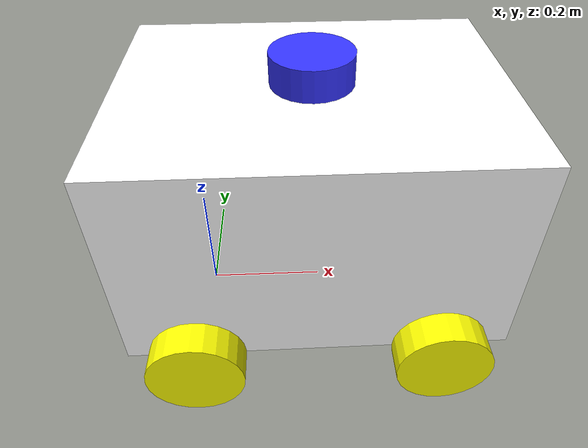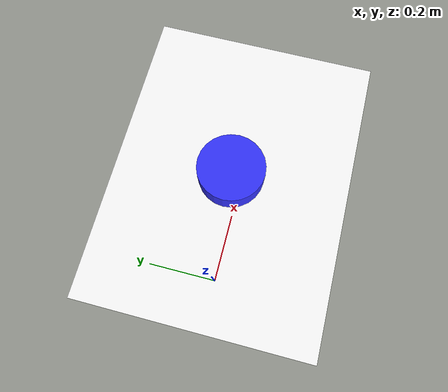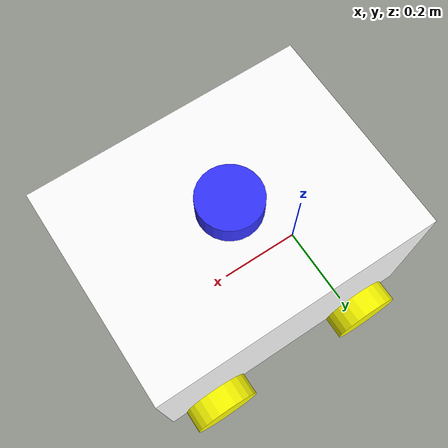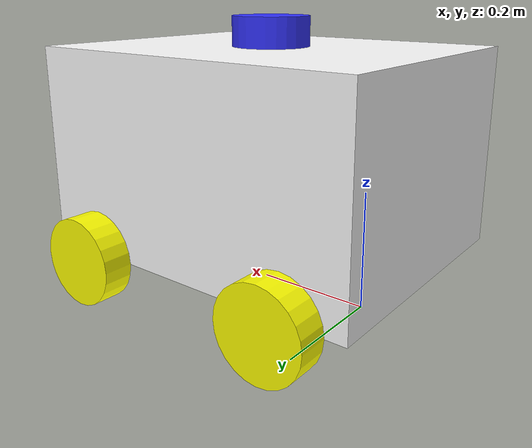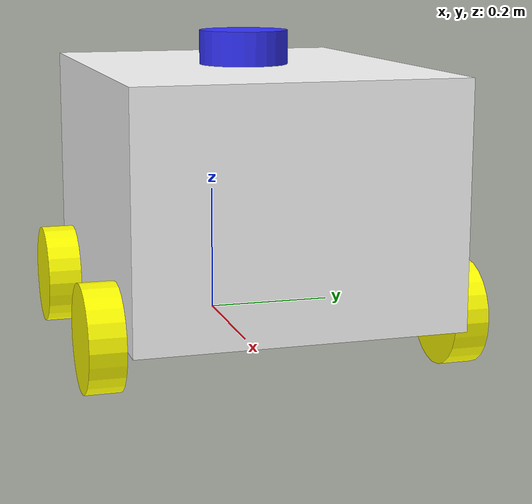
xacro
<?xml version="1.0"?>
<robot xmlns:xacro="http://www.ros.org/wiki/xacro"  name="AckermannBot">

    <xacro:include filename="real_robot.xacro"/>
    <xacro:include filename="ydlidar.xacro"/>
    <xacro:include filename="ros2_control.xacro"/>

</robot>

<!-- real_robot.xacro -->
<robot xmlns:xacro="http://www.ros.org/wiki/xacro">

    <xacro:include filename="inertial_macros.xacro"/>

    <xacro:property name="chassis_length" value="0.6"/>
    <xacro:property name="chassis_width" value="0.46"/>
    <xacro:property name="chassis_height" value="0.345"/>
    <xacro:property name="wheel_radius" value="0.075"/>
    <xacro:property name="wheel_thickness" value="0.05"/>
    <xacro:property name="wheel_base" value="0.38"/>
    <xacro:property name="track_width" value="0.51"/>
    <xacro:property name="chassis_mass" value="20.0"/>
    <xacro:property name="wheel_mass" value="1.0"/>

    <material name="white">
      <color rgba="1 1 1 1"/>
    </material>
    <material name="red">
      <color rgba="1 0 0 1"/>
    </material>
    <material name="orange">
      <color rgba="1 0.3 0.1 1"/>
    </material>
    <material name="black">
      <color rgba="0 0 0 1"/>
    </material>
    <material name="blue">
      <color rgba="0.2 0.2 1 1"/>
    </material>
    <material name="green">
      <color rgba="0 1 0 1"/>
    </material>
     <material name="yellow">
      <color rgba="1 1 0 1"/>
    </material>

    <link name="base_link"></link>

    <joint name="base_footprint_joint" type="fixed">
        <parent link="base_link"/>
        <child link="base_footprint"/>
        <origin xyz="0 0 0" rpy="0 0 0"/>
    </joint>
    <link name="base_footprint"></link>

    <joint name="chassis_joint" type="fixed">
        <parent link="base_link"/>
        <child link="chassis"/>
        <origin xyz="0 0 ${wheel_radius}"/>
    </joint>

    <link name="chassis">
        <visual>
            <origin xyz="${wheel_base/2} 0 ${chassis_height/2}" rpy="0 0 0"/>
            <geometry>
                <box size="${chassis_length} ${chassis_width} ${chassis_height}"/>
            </geometry>
            <material name="white"/>
        </visual>
        <collision>
            <origin xyz="${chassis_length/2} 0 ${chassis_height/2}"/>
            <geometry>
                <box size="${chassis_length} ${chassis_width} ${chassis_height}"/>
            </geometry>
        </collision>
        <xacro:inertial_box mass="${chassis_mass}" x="${chassis_length}" y="${chassis_width}" z="${chassis_height}">
            <origin xyz="${chassis_length/2} 0 ${chassis_height/2}" rpy="0 0 0"/>
        </xacro:inertial_box>
    </link>

    <xacro:macro name="rear_wheel" params="prefix y_offset">
        <link name="${prefix}_wheel">
            <visual>
                <origin xyz="0 0 0" rpy="${pi/2} 0 0"/>
                <geometry>
                    <cylinder radius="${wheel_radius}" length="${wheel_thickness}"/>
                </geometry>
                <material name="yellow"/>
            </visual>
            <collision>
                <origin xyz="0 0 0" rpy="${pi/2} 0 0"/>
                <geometry>
                    <cylinder radius="${wheel_radius}" length="${wheel_thickness}"/>
                </geometry>
                <surface>
                    <friction>
                        <ode>
                            <mu>1.0</mu>
                            <mu2>1.0</mu2>
                        </ode>
                    </friction>
                </surface>
            </collision>
            <xacro:inertial_cylinder mass="${wheel_mass}" radius="${wheel_radius}" length="${wheel_thickness}">
                <origin xyz="0 0 0" rpy="${pi/2} 0 0"/>
            </xacro:inertial_cylinder>
        </link>

        <joint name="${prefix}_wheel_joint" type="continuous">
            <parent link="chassis"/>
            <child link="${prefix}_wheel"/>
            <origin xyz="0 ${y_offset} 0" rpy="0 0 0"/>
            <axis xyz="0 1 0"/>
            <mimic joint="rear_axle_joint" multiplier="1.0" offset="0.0"/>
        </joint>
    </xacro:macro>

    <xacro:macro name="front_steering_wheel" params="prefix y_offset">
        <link name="${prefix}_steering_link">
            <visual>
                <geometry>
                    <box size="0.01 0.01 0.01"/>
                </geometry>
            </visual>
            <xacro:inertial_box mass="0.1" x="0.01" y="0.01" z="0.01">
                <origin xyz="0 0 0" rpy="0 0 0"/>
            </xacro:inertial_box>
        </link>

        <joint name="${prefix}_steering_joint" type="revolute">
            <parent link="chassis"/>
            <child link="${prefix}_steering_link"/>
            <origin xyz="${wheel_base} ${y_offset} 0" rpy="0 0 0"/>
            <axis xyz="0 0 1"/>
            <limit lower="-0.5" upper="0.5" effort="10" velocity="10.0"/>
            <mimic joint="steering_joint" multiplier="1.0" offset="0.0"/>
        </joint>

        <link name="${prefix}_front_wheel">
            <visual>
                <origin xyz="0 0 0" rpy="${pi/2} 0 0"/>
                <geometry>
                    <cylinder radius="${wheel_radius}" length="${wheel_thickness}"/>
                </geometry>
                <material name="yellow"/>
            </visual>
            <collision>
                <origin xyz="0 0 0" rpy="${pi/2} 0 0"/>
                <geometry>
                    <cylinder radius="${wheel_radius}" length="${wheel_thickness}"/>
                </geometry>
                <surface>
                    <friction>
                        <ode>
                            <mu>1.0</mu>
                            <mu2>1.0</mu2>
                        </ode>
                    </friction>
                </surface>
            </collision>
            <xacro:inertial_cylinder mass="${wheel_mass}" radius="${wheel_radius}" length="${wheel_thickness}">
                <origin xyz="0 0 0" rpy="${pi/2} 0 0"/>
            </xacro:inertial_cylinder>
        </link>

        <joint name="${prefix}_front_wheel_joint" type="continuous">
            <parent link="${prefix}_steering_link"/>
            <child link="${prefix}_front_wheel"/>
            <origin xyz="0 0 0" rpy="0 0 0"/>
            <axis xyz="0 1 0"/>
            <mimic joint="rear_axle_joint" multiplier="1.0" offset="0.0"/>
        </joint>
    </xacro:macro>

    <xacro:rear_wheel prefix="left_rear" y_offset="${track_width/2}"/>
    <xacro:rear_wheel prefix="right_rear" y_offset="${-track_width/2}"/>
    <xacro:front_steering_wheel prefix="left_front" y_offset="${track_width/2}"/>
    <xacro:front_steering_wheel prefix="right_front" y_offset="${-track_width/2}"/>

    <link name="virtual_steering_link">
        <xacro:inertial_box mass="0.01" x="0.01" y="0.01" z="0.01">
            <origin xyz="0 0 0" rpy="0 0 0"/>
        </xacro:inertial_box>
    </link>
    <joint name="steering_joint" type="revolute">
        <parent link="chassis"/>
        <child link="virtual_steering_link"/>
        <origin xyz="${wheel_base} 0 0" rpy="0 0 0"/>
        <axis xyz="0 0 1"/>
        <limit lower="-0.541" upper="0.471" effort="10" velocity="1.0"/>
    </joint>

    <link name="virtual_rear_wheel_link">
        <xacro:inertial_cylinder mass="0.01" radius="0.01" length="0.01">
            <origin xyz="0 0 0" rpy="0 0 0"/>
        </xacro:inertial_cylinder>
    </link>
    <joint name="rear_axle_joint" type="continuous">
        <parent link="chassis"/>
        <child link="virtual_rear_wheel_link"/>
        <origin xyz="0 0 0" rpy="0 0 0"/>
        <axis xyz="0 1 0"/>
    </joint>

    <link name="imu_link">
        <visual>
            <geometry>
                <box size="0.02 0.02 0.005"/>
            </geometry>
            <material name="black"/>
        </visual>
    </link>

    <joint name="imu_joint" type="fixed">
        <parent link="base_link"/>
        <child link="imu_link"/>
        <origin xyz="0.1 0 0.05" rpy="0 0 0"/>
    </joint>

    <link name="gps_link">
        <visual>
            <geometry>
                <box size="0.05 0.05 0.02"/>
            </geometry>
            <material name="blue"/>
        </visual>
    </link>

    <joint name="gps_joint" type="fixed">
        <parent link="base_link"/>
        <child link="gps_link"/>
        <origin xyz="0 0.1 0.1" rpy="0 0 0"/>
    </joint>

</robot>

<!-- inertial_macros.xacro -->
<robot xmlns:xacro="http://www.ros.org/wiki/xacro">

    <xacro:macro name="inertial_box" params="mass x y z *origin">
        <inertial>
            <xacro:insert_block name="origin"/>
            <mass value="${mass}" />
            <inertia ixx="${(1/12) * mass * (y*y + z*z)}" ixy="0.0" ixz="0.0"
                     iyy="${(1/12) * mass * (x*x + z*z)}" iyz="0.0"
                     izz="${(1/12) * mass * (x*x + y*y)}" />
        </inertial>
    </xacro:macro>

    <xacro:macro name="inertial_cylinder" params="mass radius length *origin">
        <inertial>
            <xacro:insert_block name="origin"/>
            <mass value="${mass}"/>
            <inertia ixx="${(1/12) * mass * (3*radius*radius + length*length)}" ixy="0" ixz="0"
                     iyy="${(1/12) * mass * (3*radius*radius + length*length)}" iyz="0"
                     izz="${(1/2) * mass * (radius*radius)}" />
        </inertial>
    </xacro:macro>

</robot>

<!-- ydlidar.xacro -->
<robot xmlns:xacro="http://www.ros.org/wiki/xacro">

    <joint name="laser_joint" type="fixed">
        <parent link="chassis"/>
        <child link="laser_frame"/>
        <origin xyz="${wheel_base/2} 0 ${chassis_height + wheel_thickness/2}" rpy="0 0 0"/>
    </joint>

    <link name="laser_frame">
        <visual>
            <geometry>
                <cylinder radius="0.065" length="0.05"/>
            </geometry>
            <material name="blue"/>
        </visual>
        <collision>
            <geometry>
                <cylinder radius="0.065" length="0.05"/>
            </geometry>
        </collision>
        <inertial>
            <mass value="0.1"/>
            <origin xyz="0 0 0" rpy="0 0 0"/>
            <inertia ixx="0.001" ixy="0" ixz="0" iyy="0.001" iyz="0" izz="0.001"/>
        </inertial>
    </link>

<gazebo reference="laser_frame">
        <material>Gazebo/Blue</material>

        <sensor name="laser" type="gpu_lidar">
            <pose>0 0 0 0 0 0</pose>
            <visualize>true</visualize>
            <update_rate>10</update_rate>

            <topic>scan</topic>

            <gz_frame_id>laser_frame</gz_frame_id>

            <lidar>
                <scan>
                    <horizontal>
                        <samples>360</samples>
                        <resolution>1</resolution>
                        <min_angle>-3.14</min_angle>
                        <max_angle>3.14</max_angle>
                    </horizontal>
                </scan>
                <range>
                    <min>0.15</min>
                    <max>12.0</max>
                </range>
            </lidar>

            </sensor>
    </gazebo>

</robot>
